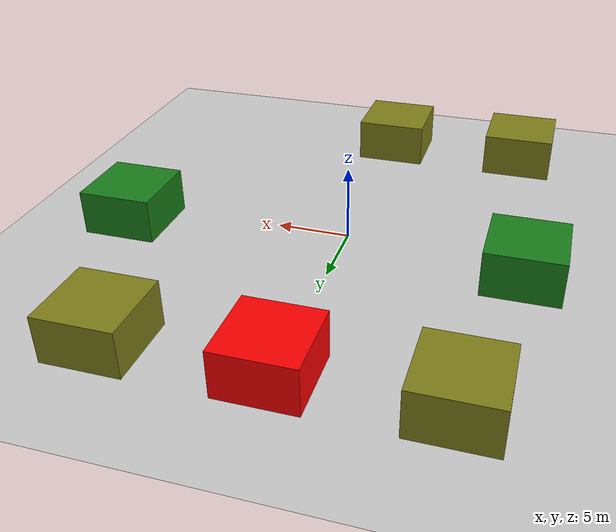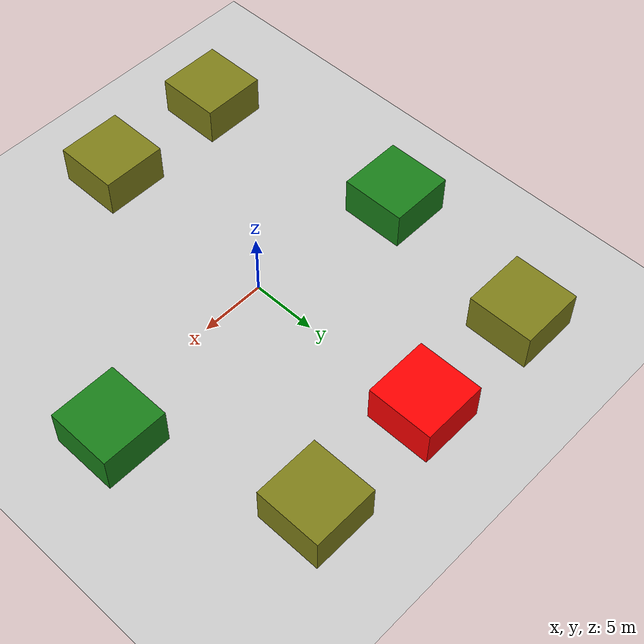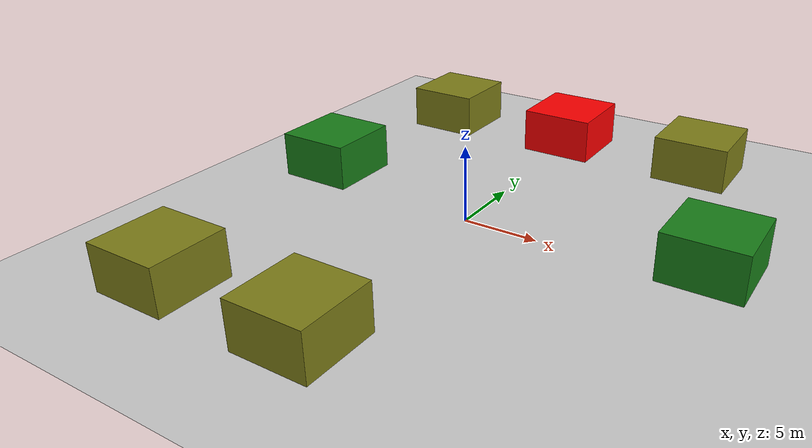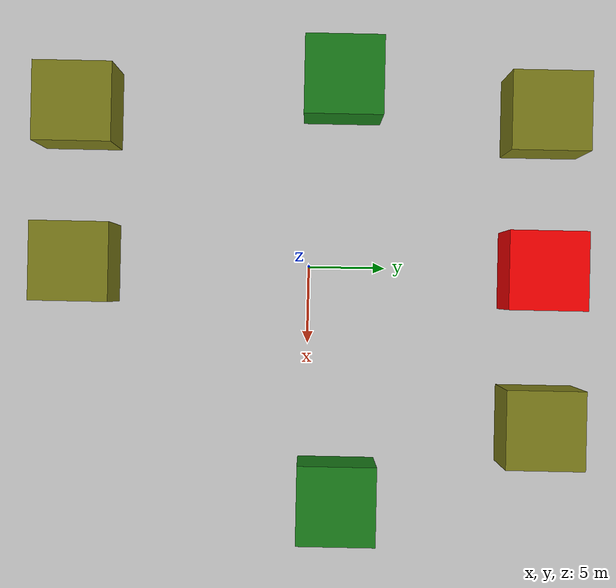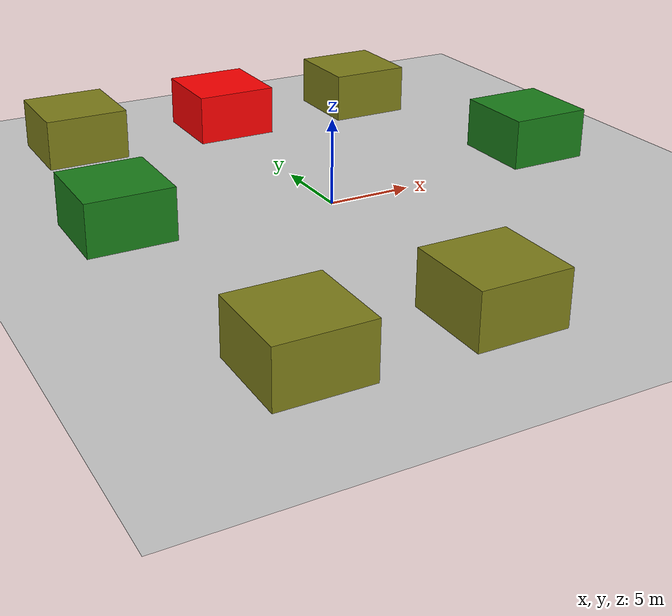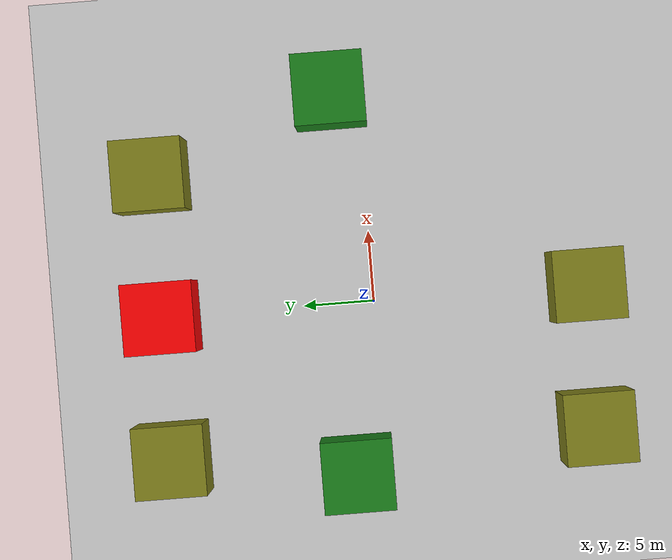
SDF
<sdf version="1.8">
 <world name="demo">
  <plugin filename="ignition-gazebo-physics-system" name="gz::sim::systems::Physics"/>
  <plugin filename="ignition-gazebo-sensors-system" name="gz::sim::systems::Sensors">
   <render_engine>ogre2</render_engine>
  </plugin>
  <plugin filename="ignition-gazebo-scene-broadcaster-system" name="gz::sim::systems::SceneBroadcaster"/>
  <plugin filename="ignition-gazebo-user-commands-system" name="gz::sim::systems::UserCommands"/>
  <plugin filename="BasicSystem" name="ros_gz_example_gazebo::BasicSystem"/>
  <plugin filename="FullSystem" name="ros_gz_example_gazebo::FullSystem"/>
  <light name="sun" type="directional">
   <pose>0 0 10 0 0 0</pose>
   <diffuse>0.8 0.8 0.8 1</diffuse>
   <specular>0.2 0.2 0.2 1</specular>
   <attenuation>
    <range>1000</range>
    <constant>0.9</constant>
    <linear>0.01</linear>
    <quadratic>0.001</quadratic>
   </attenuation>
   <direction>-0.5 0.1 -0.9</direction>
  </light>
  <model name="ground_plane">
   <static>true</static>
   <link name="link">
    <collision name="collision">
     <geometry><plane><normal>0 0 1</normal><size>100 100</size></plane></geometry>
    </collision>
    <visual name="visual">
     <geometry><plane><normal>0 0 1</normal><size>100 100</size></plane></geometry>
     <material>
      <ambient>0.8 0.8 0.8 1</ambient>
      <diffuse>0.8 0.8 0.8 1</diffuse>
      <specular>0.8 0.8 0.8 1</specular>
     </material>
    </visual>
   </link>
  </model>
  <model name="box">
   <pose>0 15 0.5 0 0 0</pose>
   <link name="box_link">
    <inertial>
     <inertia><ixx>0.16666</ixx><ixy>0</ixy><ixz>0</ixz><iyy>0.16666</iyy><iyz>0</iyz><izz>0.16666</izz></inertia>
     <mass>1.0</mass>
    </inertial>
    <collision name="box_collision"><geometry><box><size>1 1 1</size></box></geometry></collision>
    <visual name="box_visual">
     <geometry><box><size>5 5 5</size></box></geometry>
     <material><ambient>1 0 0 1</ambient><diffuse>1 0 0 1</diffuse><specular>1 0 0 1</specular></material>
    </visual>
   </link>
  </model>
  <model name="box2">
   <pose>10 15 0.5 0 0 0</pose>
   <link name="box_link">
    <inertial>
     <inertia><ixx>0.16666</ixx><ixy>0</ixy><ixz>0</ixz><iyy>0.16666</iyy><iyz>0</iyz><izz>0.16666</izz></inertia>
     <mass>1.0</mass>
    </inertial>
    <collision name="box_collision"><geometry><box><size>1 1 1</size></box></geometry></collision>
    <visual name="box_visual">
     <geometry><box><size>5 5 5</size></box></geometry>
     <material>
      <ambient>0.8 0.5 0.2 1</ambient>
      <diffuse>0.5 0.5 0.1 1</diffuse>
      <specular>0.2 0 0.3 1</specular>
     </material>
    </visual>
   </link>
  </model>
  <model name="box3">
   <pose>-10 15 0.5 0 0 0</pose>
   <link name="box_link">
    <inertial>
     <inertia><ixx>0.16666</ixx><ixy>0</ixy><ixz>0</ixz><iyy>0.16666</iyy><iyz>0</iyz><izz>0.16666</izz></inertia>
     <mass>1.0</mass>
    </inertial>
    <collision name="box_collision"><geometry><box><size>1 1 1</size></box></geometry></collision>
    <visual name="box_visual">
     <geometry><box><size>5 5 5</size></box></geometry>
     <material>
      <ambient>0.8 0.5 0.2 1</ambient>
      <diffuse>0.5 0.5 0.1 1</diffuse>
      <specular>0.2 0 0.3 1</specular>
     </material>
    </visual>
   </link>
  </model>
  <model name="box4">
   <pose>-10 -15 0.5 0 0 0</pose>
   <link name="box_link">
    <inertial>
     <inertia><ixx>0.16666</ixx><ixy>0</ixy><ixz>0</ixz><iyy>0.16666</iyy><iyz>0</iyz><izz>0.16666</izz></inertia>
     <mass>1.0</mass>
    </inertial>
    <collision name="box_collision"><geometry><box><size>1 1 1</size></box></geometry></collision>
    <visual name="box_visual">
     <geometry><box><size>5 5 5</size></box></geometry>
     <material>
      <ambient>0.8 0.5 0.2 1</ambient>
      <diffuse>0.5 0.5 0.1 1</diffuse>
      <specular>0.2 0 0.3 1</specular>
     </material>
    </visual>
   </link>
  </model>
  <model name="box5">
   <pose>0 -15 0.5 0 0 0</pose>
   <link name="box_link">
    <inertial>
     <inertia><ixx>0.16666</ixx><ixy>0</ixy><ixz>0</ixz><iyy>0.16666</iyy><iyz>0</iyz><izz>0.16666</izz></inertia>
     <mass>1.0</mass>
    </inertial>
    <collision name="box_collision"><geometry><box><size>1 1 1</size></box></geometry></collision>
    <visual name="box_visual">
     <geometry><box><size>5 5 5</size></box></geometry>
     <material>
      <ambient>0.8 0.5 0.2 1</ambient>
      <diffuse>0.5 0.5 0.1 1</diffuse>
      <specular>0.2 0 0.3 1</specular>
     </material>
    </visual>
   </link>
  </model>
  <model name="box7">
   <pose>15 2 0.5 0 0 0</pose>
   <link name="box_link">
    <inertial>
     <inertia><ixx>0.16666</ixx><ixy>0</ixy><ixz>0</ixz><iyy>0.16666</iyy><iyz>0</iyz><izz>0.16666</izz></inertia>
     <mass>1.0</mass>
    </inertial>
    <collision name="box_collision"><geometry><box><size>1 1 1</size></box></geometry></collision>
    <visual name="box_visual">
     <geometry><box><size>5 5 5</size></box></geometry>
     <material>
      <ambient>0.3 0.1 0.2 1</ambient>
      <diffuse>0.1 0.5 0.1 1</diffuse>
      <specular>0.2 0 0.3 1</specular>
     </material>
    </visual>
   </link>
  </model>
  <model name="box8">
   <pose>-12 2 0.5 0 0 0</pose>
   <link name="box_link">
    <inertial>
     <inertia><ixx>0.16666</ixx><ixy>0</ixy><ixz>0</ixz><iyy>0.16666</iyy><iyz>0</iyz><izz>0.16666</izz></inertia>
     <mass>1.0</mass>
    </inertial>
    <collision name="box_collision"><geometry><box><size>1 1 1</size></box></geometry></collision>
    <visual name="box_visual">
     <geometry><box><size>5 5 5</size></box></geometry>
     <material>
      <ambient>0.3 0.1 0.2 1</ambient>
      <diffuse>0.1 0.5 0.1 1</diffuse>
      <specular>0.2 0 0.3 1</specular>
     </material>
    </visual>
   </link>
  </model>
 </world>
</sdf>
